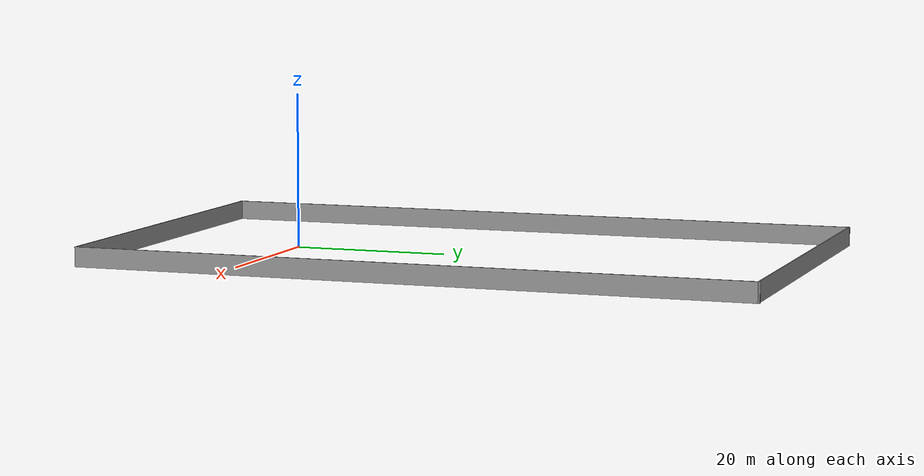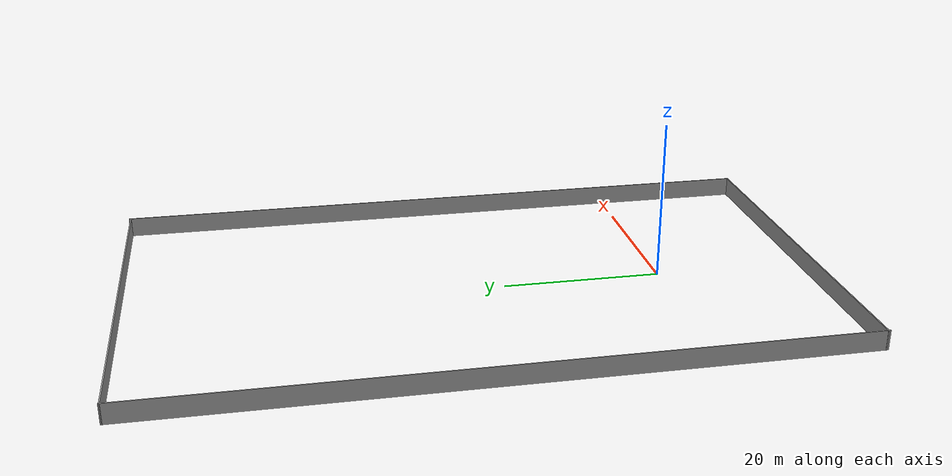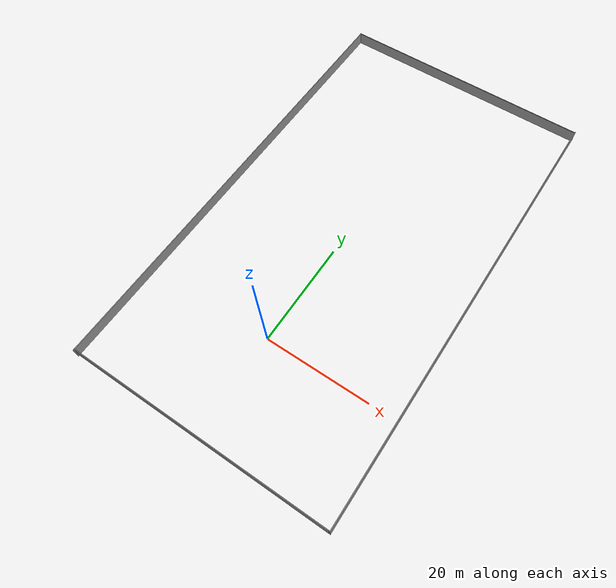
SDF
<?xml version='1.0'?>
<sdf version='1.6'>
  <model name='tunnel_closed'>
    <pose frame=''>0.587089 24.0242 0 0 -0 0</pose>
    <link name='Wall_17'>
      <collision name='Wall_17_Collision'>
        <geometry>
          <box>
            <size>86.75 0.15 2.5</size>
          </box>
        </geometry>
        <pose frame=''>0 0 1.25 0 -0 0</pose>
      </collision>
      <visual name='Wall_17_Visual'>
        <pose frame=''>0 0 1.25 0 -0 0</pose>
        <geometry>
          <box>
            <size>86.75 0.15 2.5</size>
          </box>
        </geometry>
        <material>
          <script>
            <uri>file://media/materials/scripts/gazebo.material</uri>
            <name>Gazebo/Grey</name>
          </script>
          <ambient>1 1 1 1</ambient>
        </material>
        <meta>
          <layer>0</layer>
        </meta>
      </visual>
      <pose frame=''>-24.9714 -1e-06 0 0 -0 1.5708</pose>
    </link>
    <link name='Wall_18'>
      <collision name='Wall_18_Collision'>
        <geometry>
          <box>
            <size>50.137 0.15 2.5</size>
          </box>
        </geometry>
        <pose frame=''>0 0 1.25 0 -0 0</pose>
      </collision>
      <visual name='Wall_18_Visual'>
        <pose frame=''>0 0 1.25 0 -0 0</pose>
        <geometry>
          <box>
            <size>50.137 0.15 2.5</size>
          </box>
        </geometry>
        <material>
          <script>
            <uri>file://media/materials/scripts/gazebo.material</uri>
            <name>Gazebo/Grey</name>
          </script>
          <ambient>1 1 1 1</ambient>
        </material>
        <meta>
          <layer>0</layer>
        </meta>
      </visual>
      <pose frame=''>0.021063 43.042 0 0 -0 -0.007937</pose>
    </link>
    <link name='Wall_19'>
      <collision name='Wall_19_Collision'>
        <geometry>
          <box>
            <size>86.247 0.15 2.5</size>
          </box>
        </geometry>
        <pose frame=''>0 0 1.25 0 -0 0</pose>
      </collision>
      <visual name='Wall_19_Visual'>
        <pose frame=''>0 0 1.25 0 -0 0</pose>
        <geometry>
          <box>
            <size>86.247 0.15 2.5</size>
          </box>
        </geometry>
        <material>
          <script>
            <uri>file://media/materials/scripts/gazebo.material</uri>
            <name>Gazebo/Grey</name>
          </script>
          <ambient>1 1 1 1</ambient>
        </material>
        <meta>
          <layer>0</layer>
        </meta>
      </visual>
      <pose frame=''>24.9153 -0.04782 0 0 -0 -1.57308</pose>
    </link>
    <link name='Wall_20'>
      <collision name='Wall_20_Collision'>
        <geometry>
          <box>
            <size>49.75 0.15 2.5</size>
          </box>
        </geometry>
        <pose frame=''>0 0 1.25 0 -0 0</pose>
      </collision>
      <visual name='Wall_20_Visual'>
        <pose frame=''>0 0 1.25 0 -0 0</pose>
        <geometry>
          <box>
            <size>49.75 0.15 2.5</size>
          </box>
        </geometry>
        <material>
          <script>
            <uri>file://media/materials/scripts/gazebo.material</uri>
            <name>Gazebo/Grey</name>
          </script>
          <ambient>1 1 1 1</ambient>
        </material>
        <meta>
          <layer>0</layer>
        </meta>
      </visual>
      <pose frame=''>-0.214392 -43.0962 0 0 -0 3.14159</pose>
    </link>
    <static>1</static>
  </model>
</sdf>
